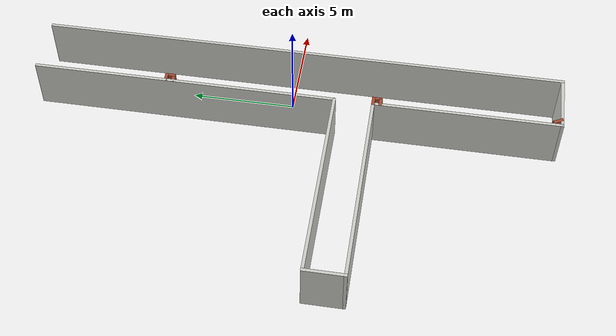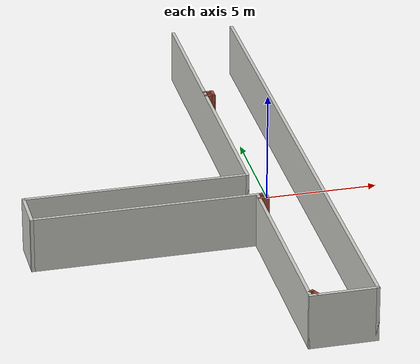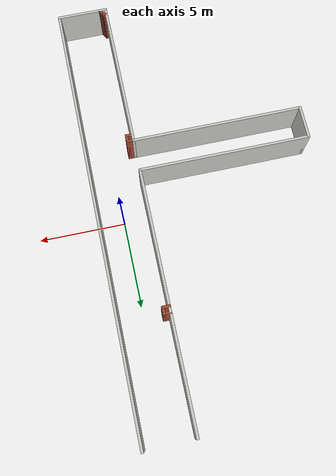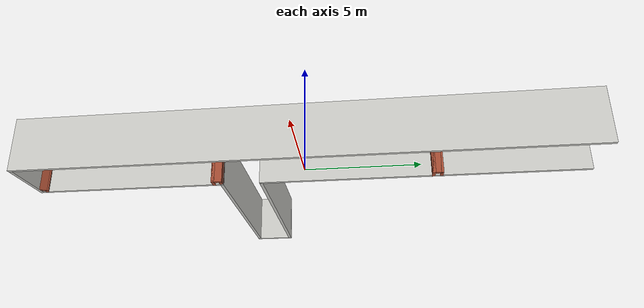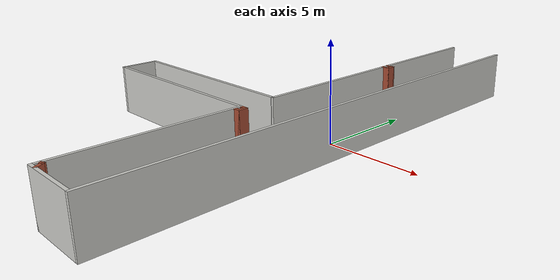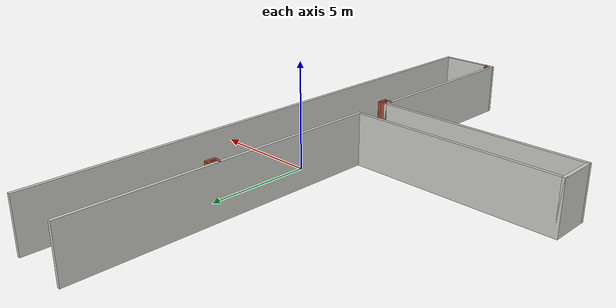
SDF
<?xml version='1.0'?>
<sdf version='1.6'>
  <model name='AC2'>
    <pose frame=''>-4.96 -0.245 0 0 -0 0</pose>
    <link name='Wall_0'>
      <collision name='Wall_0_Collision'>
        <geometry>
          <box>
            <size>3 0.15 2.5</size>
          </box>
        </geometry>
        <pose frame=''>0 0 1.25 0 -0 0</pose>
      </collision>
      <visual name='Wall_0_Visual'>
        <pose frame=''>0 0 1.25 0 -0 0</pose>
        <geometry>
          <box>
            <size>3 0.15 2.5</size>
          </box>
        </geometry>
        <material>
          <script>
            <uri>file://media/materials/scripts/gazebo.material</uri>
            <name>Gazebo/CeilingTiled</name>
          </script>
          <ambient>1 1 1 1</ambient>
        </material>
        <meta>
          <layer>0</layer>
        </meta>
      </visual>
      <pose frame=''>4.925 -12.675 0 0 -0 0</pose>
    </link>
    <link name='Wall_1'>
      <collision name='Wall_1_Collision'>
        <geometry>
          <box>
            <size>25.5 0.15 2.5</size>
          </box>
        </geometry>
        <pose frame=''>0 0 1.25 0 -0 0</pose>
      </collision>
      <visual name='Wall_1_Visual'>
        <pose frame=''>0 0 1.25 0 -0 0</pose>
        <geometry>
          <box>
            <size>25.5 0.15 2.5</size>
          </box>
        </geometry>
        <material>
          <script>
            <uri>file://media/materials/scripts/gazebo.material</uri>
            <name>Gazebo/CeilingTiled</name>
          </script>
          <ambient>1 1 1 1</ambient>
        </material>
        <meta>
          <layer>0</layer>
        </meta>
      </visual>
      <pose frame=''>6.35 -0 0 0 -0 1.5708</pose>
    </link>
    <link name='Wall_10'>
      <collision name='Wall_10_Collision'>
        <geometry>
          <box>
            <size>0.5 0.15 2.5</size>
          </box>
        </geometry>
        <pose frame=''>0 0 1.25 0 -0 0</pose>
      </collision>
      <visual name='Wall_10_Visual'>
        <pose frame=''>0 0 1.25 0 -0 0</pose>
        <geometry>
          <box>
            <size>0.5 0.15 2.5</size>
          </box>
        </geometry>
        <material>
          <script>
            <uri>file://media/materials/scripts/gazebo.material</uri>
            <name>Gazebo/Bricks</name>
          </script>
          <ambient>1 1 1 1</ambient>
        </material>
        <meta>
          <layer>0</layer>
        </meta>
      </visual>
      <pose frame=''>3.85 -4 0 0 -0 -1.5708</pose>
    </link>
    <link name='Wall_11'>
      <collision name='Wall_11_Collision'>
        <geometry>
          <box>
            <size>0.5 0.15 2.5</size>
          </box>
        </geometry>
        <pose frame=''>0 0 1.25 0 -0 0</pose>
      </collision>
      <visual name='Wall_11_Visual'>
        <pose frame=''>0 0 1.25 0 -0 0</pose>
        <geometry>
          <box>
            <size>0.5 0.15 2.5</size>
          </box>
        </geometry>
        <material>
          <script>
            <uri>file://media/materials/scripts/gazebo.material</uri>
            <name>Gazebo/Bricks</name>
          </script>
          <ambient>1 1 1 1</ambient>
        </material>
        <meta>
          <layer>0</layer>
        </meta>
      </visual>
      <pose frame=''>3.675 -4.175 0 0 -0 3.14159</pose>
    </link>
    <link name='Wall_13'>
      <collision name='Wall_13_Collision'>
        <geometry>
          <box>
            <size>0.25 0.15 2.5</size>
          </box>
        </geometry>
        <pose frame=''>0 0 1.25 0 -0 0</pose>
      </collision>
      <visual name='Wall_13_Visual'>
        <pose frame=''>0 0 1.25 0 -0 0</pose>
        <geometry>
          <box>
            <size>0.25 0.15 2.5</size>
          </box>
        </geometry>
        <material>
          <script>
            <uri>file://media/materials/scripts/gazebo.material</uri>
            <name>Gazebo/Bricks</name>
          </script>
          <ambient>1 1 1 1</ambient>
        </material>
        <meta>
          <layer>0</layer>
        </meta>
      </visual>
      <pose frame=''>3.62305 -12.3503 0 0 -0 0.261799</pose>
    </link>
    <link name='Wall_14'>
      <collision name='Wall_14_Collision'>
        <geometry>
          <box>
            <size>0.5 0.15 2.5</size>
          </box>
        </geometry>
        <pose frame=''>0 0 1.25 0 -0 0</pose>
      </collision>
      <visual name='Wall_14_Visual'>
        <pose frame=''>0 0 1.25 0 -0 0</pose>
        <geometry>
          <box>
            <size>0.5 0.15 2.5</size>
          </box>
        </geometry>
        <material>
          <script>
            <uri>file://media/materials/scripts/gazebo.material</uri>
            <name>Gazebo/Bricks</name>
          </script>
          <ambient>1 1 1 1</ambient>
        </material>
        <meta>
          <layer>0</layer>
        </meta>
      </visual>
      <pose frame=''>3.75884 -12.4889 0 0 -0 -1.0472</pose>
    </link>
    <link name='Wall_19'>
      <collision name='Wall_19_Collision'>
        <geometry>
          <box>
            <size>0.5 0.15 2.5</size>
          </box>
        </geometry>
        <pose frame=''>0 0 1.25 0 -0 0</pose>
      </collision>
      <visual name='Wall_19_Visual'>
        <pose frame=''>0 0 1.25 0 -0 0</pose>
        <geometry>
          <box>
            <size>0.5 0.15 2.5</size>
          </box>
        </geometry>
        <material>
          <script>
            <uri>file://media/materials/scripts/gazebo.material</uri>
            <name>Gazebo/Bricks</name>
          </script>
          <ambient>1 1 1 1</ambient>
        </material>
        <meta>
          <layer>0</layer>
        </meta>
      </visual>
      <pose frame=''>3.67591 5.87263 0 0 -0 0</pose>
    </link>
    <link name='Wall_20'>
      <collision name='Wall_20_Collision'>
        <geometry>
          <box>
            <size>0.5 0.15 2.5</size>
          </box>
        </geometry>
        <pose frame=''>0 0 1.25 0 -0 0</pose>
      </collision>
      <visual name='Wall_20_Visual'>
        <pose frame=''>0 0 1.25 0 -0 0</pose>
        <geometry>
          <box>
            <size>0.5 0.15 2.5</size>
          </box>
        </geometry>
        <material>
          <script>
            <uri>file://media/materials/scripts/gazebo.material</uri>
            <name>Gazebo/Bricks</name>
          </script>
          <ambient>1 1 1 1</ambient>
        </material>
        <meta>
          <layer>0</layer>
        </meta>
      </visual>
      <pose frame=''>3.85091 6.04763 0 0 -0 1.5708</pose>
    </link>
    <link name='Wall_21'>
      <collision name='Wall_21_Collision'>
        <geometry>
          <box>
            <size>0.5 0.15 2.5</size>
          </box>
        </geometry>
        <pose frame=''>0 0 1.25 0 -0 0</pose>
      </collision>
      <visual name='Wall_21_Visual'>
        <pose frame=''>0 0 1.25 0 -0 0</pose>
        <geometry>
          <box>
            <size>0.5 0.15 2.5</size>
          </box>
        </geometry>
        <material>
          <script>
            <uri>file://media/materials/scripts/gazebo.material</uri>
            <name>Gazebo/Bricks</name>
          </script>
          <ambient>1 1 1 1</ambient>
        </material>
        <meta>
          <layer>0</layer>
        </meta>
      </visual>
      <pose frame=''>3.67591 6.22263 0 0 -0 3.14159</pose>
    </link>
    <link name='Wall_3'>
      <collision name='Wall_3_Collision'>
        <geometry>
          <box>
            <size>9 0.15 2.5</size>
          </box>
        </geometry>
        <pose frame=''>0 0 1.25 0 -0 0</pose>
      </collision>
      <visual name='Wall_3_Visual'>
        <pose frame=''>0 0 1.25 0 -0 0</pose>
        <geometry>
          <box>
            <size>9 0.15 2.5</size>
          </box>
        </geometry>
        <material>
          <script>
            <uri>file://media/materials/scripts/gazebo.material</uri>
            <name>Gazebo/CeilingTiled</name>
          </script>
          <ambient>1 1 1 1</ambient>
        </material>
        <meta>
          <layer>0</layer>
        </meta>
      </visual>
      <pose frame=''>3.5 -8.25 0 0 -0 1.5708</pose>
    </link>
    <link name='Wall_4'>
      <collision name='Wall_4_Collision'>
        <geometry>
          <box>
            <size>10 0.15 2.5</size>
          </box>
        </geometry>
        <pose frame=''>0 0 1.25 0 -0 0</pose>
      </collision>
      <visual name='Wall_4_Visual'>
        <pose frame=''>0 0 1.25 0 -0 0</pose>
        <geometry>
          <box>
            <size>10 0.15 2.5</size>
          </box>
        </geometry>
        <material>
          <script>
            <uri>file://media/materials/scripts/gazebo.material</uri>
            <name>Gazebo/CeilingTiled</name>
          </script>
          <ambient>1 1 1 1</ambient>
        </material>
        <meta>
          <layer>0</layer>
        </meta>
      </visual>
      <pose frame=''>-1.425 -3.825 0 0 -0 3.14159</pose>
    </link>
    <link name='Wall_5'>
      <collision name='Wall_5_Collision'>
        <geometry>
          <box>
            <size>2 0.15 2.5</size>
          </box>
        </geometry>
        <pose frame=''>0 0 1.25 0 -0 0</pose>
      </collision>
      <visual name='Wall_5_Visual'>
        <pose frame=''>0 0 1.25 0 -0 0</pose>
        <geometry>
          <box>
            <size>2 0.15 2.5</size>
          </box>
        </geometry>
        <material>
          <script>
            <uri>file://media/materials/scripts/gazebo.material</uri>
            <name>Gazebo/CeilingTiled</name>
          </script>
          <ambient>1 1 1 1</ambient>
        </material>
        <meta>
          <layer>0</layer>
        </meta>
      </visual>
      <pose frame=''>-6.35 -2.9 0 0 -0 1.5708</pose>
    </link>
    <link name='Wall_6'>
      <collision name='Wall_6_Collision'>
        <geometry>
          <box>
            <size>10 0.15 2.5</size>
          </box>
        </geometry>
        <pose frame=''>0 0 1.25 0 -0 0</pose>
      </collision>
      <visual name='Wall_6_Visual'>
        <pose frame=''>0 0 1.25 0 -0 0</pose>
        <geometry>
          <box>
            <size>10 0.15 2.5</size>
          </box>
        </geometry>
        <material>
          <script>
            <uri>file://media/materials/scripts/gazebo.material</uri>
            <name>Gazebo/CeilingTiled</name>
          </script>
          <ambient>1 1 1 1</ambient>
        </material>
        <meta>
          <layer>0</layer>
        </meta>
      </visual>
      <pose frame=''>-1.425 -1.975 0 0 -0 0</pose>
    </link>
    <link name='Wall_7'>
      <collision name='Wall_7_Collision'>
        <geometry>
          <box>
            <size>14.75 0.15 2.5</size>
          </box>
        </geometry>
        <pose frame=''>0 0 1.25 0 -0 0</pose>
      </collision>
      <visual name='Wall_7_Visual'>
        <pose frame=''>0 0 1.25 0 -0 0</pose>
        <geometry>
          <box>
            <size>14.75 0.15 2.5</size>
          </box>
        </geometry>
        <material>
          <script>
            <uri>file://media/materials/scripts/gazebo.material</uri>
            <name>Gazebo/CeilingTiled</name>
          </script>
          <ambient>1 1 1 1</ambient>
        </material>
        <meta>
          <layer>0</layer>
        </meta>
      </visual>
      <pose frame=''>3.5 5.325 0 0 -0 1.5708</pose>
    </link>
    <link name='Wall_9'>
      <collision name='Wall_9_Collision'>
        <geometry>
          <box>
            <size>0.5 0.15 2.5</size>
          </box>
        </geometry>
        <pose frame=''>0 0 1.25 0 -0 0</pose>
      </collision>
      <visual name='Wall_9_Visual'>
        <pose frame=''>0 0 1.25 0 -0 0</pose>
        <geometry>
          <box>
            <size>0.5 0.15 2.5</size>
          </box>
        </geometry>
        <material>
          <script>
            <uri>file://media/materials/scripts/gazebo.material</uri>
            <name>Gazebo/Bricks</name>
          </script>
          <ambient>1 1 1 1</ambient>
        </material>
        <meta>
          <layer>0</layer>
        </meta>
      </visual>
      <pose frame=''>3.675 -3.825 0 0 -0 0</pose>
    </link>
    <static>1</static>
  </model>
</sdf>
